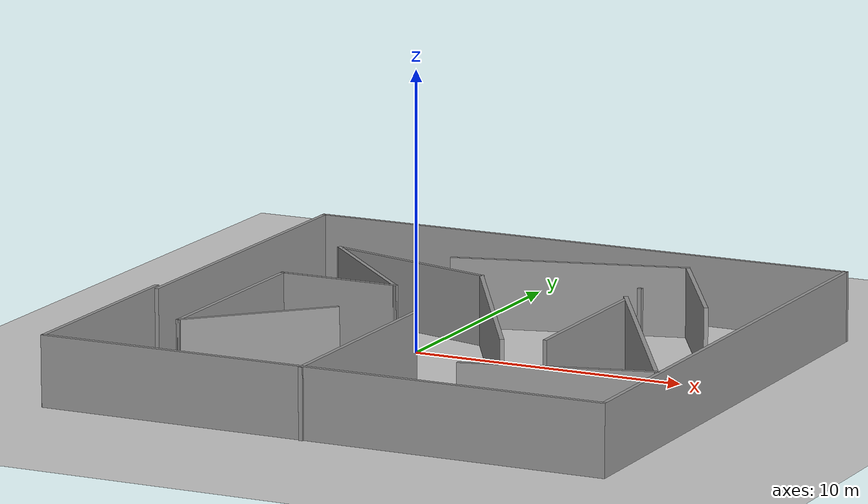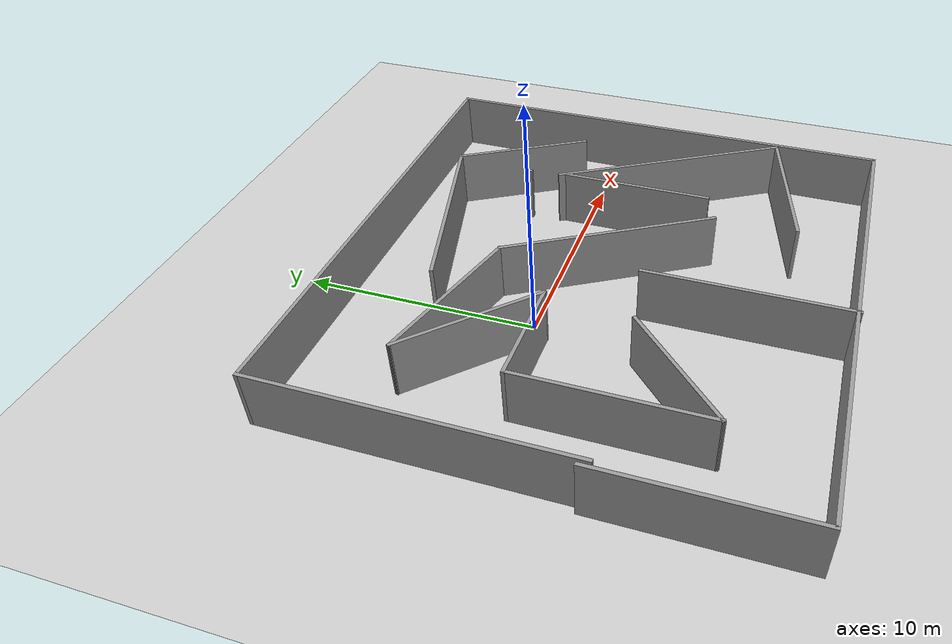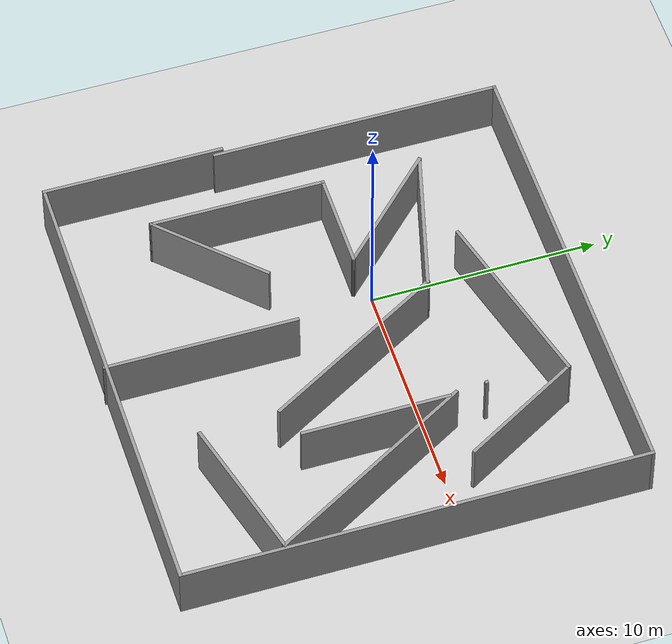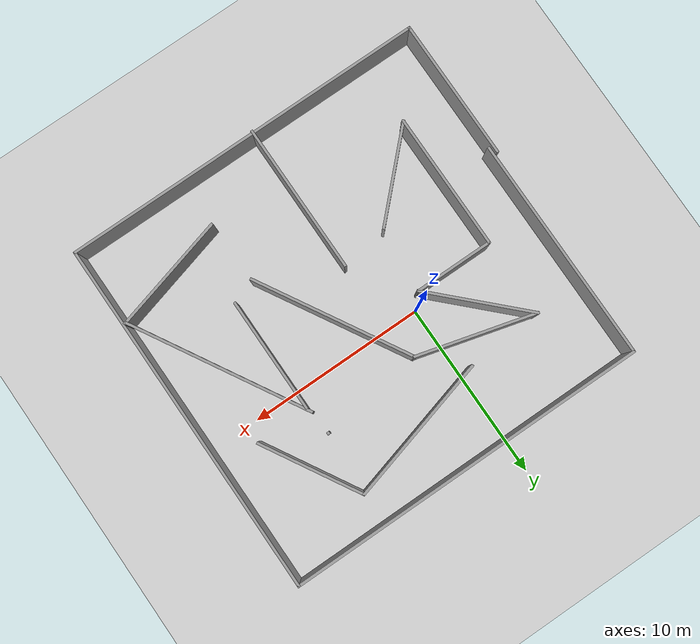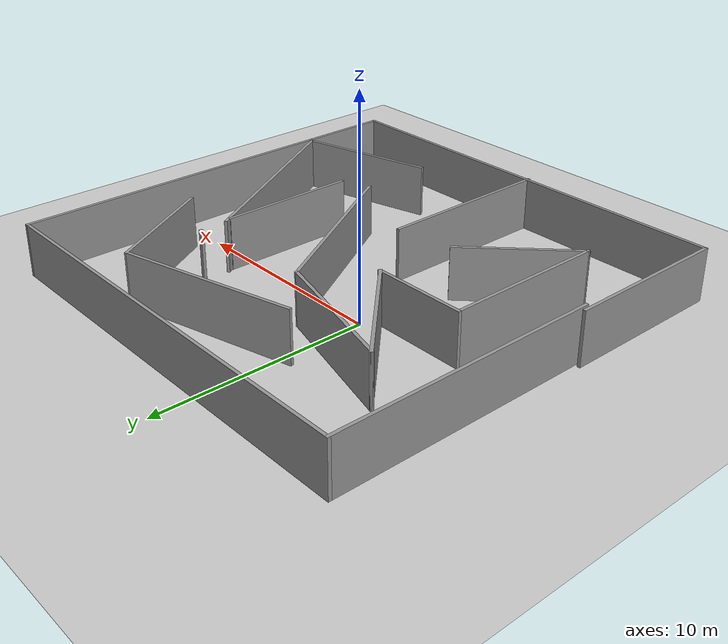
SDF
<sdf version="1.4">
 <world name="default">
  <light name="sun" type="directional">
   <pose>0 0 10 0 -0 0</pose>
   <diffuse>0.8 0.8 0.8 1</diffuse>
   <specular>0.2 0.2 0.2 1</specular>
   <attenuation>
    <range>1000</range>
    <constant>0.9</constant>
    <linear>0.01</linear>
    <quadratic>0.001</quadratic>
   </attenuation>
   <direction>0.5 0.1 -0.9</direction>
  </light>
  <model name="ground_plane">
   <static>1</static>
   <link name="link">
    <collision name="collision">
     <geometry><plane><normal>0 0 1</normal><size>100 100</size></plane></geometry>
     <surface><friction><ode><mu>100</mu><mu2>50</mu2></ode></friction></surface>
    </collision>
    <visual name="visual">
     <cast_shadows>0</cast_shadows>
     <geometry><plane><normal>0 0 1</normal><size>100 100</size></plane></geometry>
     <material>
      <script><uri>file://media/materials/scripts/gazebo.material</uri><name>Gazebo/Grey</name></script>
     </material>
    </visual>
    <velocity_decay><linear>0</linear><angular>0</angular></velocity_decay>
   </link>
  </model>
  <scene><ambient>0.4 0.4 0.4 1</ambient><background>0.7 0.7 0.7 1</background><shadows>0</shadows></scene>
  <physics type="ode">
   <max_step_size>0.01</max_step_size>
   <real_time_factor>1</real_time_factor>
   <real_time_update_rate>0</real_time_update_rate>
   <gravity>0 0 -9.8</gravity>
  </physics>
  <include><uri>model://custom_maze</uri><pose>2.4 -2.1 0 0 0 0</pose></include>
 </world>
</sdf>

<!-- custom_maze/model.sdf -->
<sdf version='1.7'>
  <model name='custom_maze'>
    <pose>-0.400527 0.370273 0 0 -0 0</pose>
    <link name='Wall_13'>
      <collision name='Wall_13_Collision'>
        <geometry>
          <box>
            <size>0.16 0.15 2.5</size>
          </box>
        </geometry>
        <pose>0 0 1.25 0 -0 0</pose>
      </collision>
      <visual name='Wall_13_Visual'>
        <pose>0 0 1.25 0 -0 0</pose>
        <geometry>
          <box>
            <size>0.16 0.15 2.5</size>
          </box>
        </geometry>
        <material>
          <script>
            <uri>file://media/materials/scripts/gazebo.material</uri>
            <name>Gazebo/Grey</name>
          </script>
          <ambient>1 1 1 1</ambient>
        </material>
        <meta>
          <layer>0</layer>
        </meta>
      </visual>
      <pose>4.87592 4.74466 0 0 -0 0</pose>
    </link>
    <link name='Wall_16'>
      <collision name='Wall_16_Collision'>
        <geometry>
          <box>
            <size>8.5 0.15 2.5</size>
          </box>
        </geometry>
        <pose>0 0 1.25 0 -0 0</pose>
      </collision>
      <visual name='Wall_16_Visual'>
        <pose>0 0 1.25 0 -0 0</pose>
        <geometry>
          <box>
            <size>8.5 0.15 2.5</size>
          </box>
        </geometry>
        <material>
          <script>
            <uri>file://media/materials/scripts/gazebo.material</uri>
            <name>Gazebo/Grey</name>
          </script>
          <ambient>1 1 1 1</ambient>
        </material>
        <meta>
          <layer>0</layer>
        </meta>
      </visual>
      <pose>1.08404 7.16042 0 0 -0 0.261799</pose>
    </link>
    <link name='Wall_17'>
      <collision name='Wall_17_Collision'>
        <geometry>
          <box>
            <size>6 0.15 2.5</size>
          </box>
        </geometry>
        <pose>0 0 1.25 0 -0 0</pose>
      </collision>
      <visual name='Wall_17_Visual'>
        <pose>0 0 1.25 0 -0 0</pose>
        <geometry>
          <box>
            <size>6 0.15 2.5</size>
          </box>
        </geometry>
        <material>
          <script>
            <uri>file://media/materials/scripts/gazebo.material</uri>
            <name>Gazebo/Grey</name>
          </script>
          <ambient>1 1 1 1</ambient>
        </material>
        <meta>
          <layer>0</layer>
        </meta>
      </visual>
      <pose>6.57928 5.70786 0 0 -0 -1.0472</pose>
    </link>
    <link name='Wall_19'>
      <collision name='Wall_19_Collision'>
        <geometry>
          <box>
            <size>10.5 0.15 2.5</size>
          </box>
        </geometry>
        <pose>0 0 1.25 0 -0 0</pose>
      </collision>
      <visual name='Wall_19_Visual'>
        <pose>0 0 1.25 0 -0 0</pose>
        <geometry>
          <box>
            <size>10.5 0.15 2.5</size>
          </box>
        </geometry>
        <material>
          <script>
            <uri>file://media/materials/scripts/gazebo.material</uri>
            <name>Gazebo/Grey</name>
          </script>
          <ambient>1 1 1 1</ambient>
        </material>
        <meta>
          <layer>0</layer>
        </meta>
      </visual>
      <pose>7.55134 -1.09448 0 0 -0 -1.0472</pose>
    </link>
    <link name='Wall_21'>
      <collision name='Wall_21_Collision'>
        <geometry>
          <box>
            <size>6.5 0.15 2.5</size>
          </box>
        </geometry>
        <pose>0 0 1.25 0 -0 0</pose>
      </collision>
      <visual name='Wall_21_Visual'>
        <pose>0 0 1.25 0 -0 0</pose>
        <geometry>
          <box>
            <size>6.5 0.15 2.5</size>
          </box>
        </geometry>
        <material>
          <script>
            <uri>file://media/materials/scripts/gazebo.material</uri>
            <name>Gazebo/Grey</name>
          </script>
          <ambient>1 1 1 1</ambient>
        </material>
        <meta>
          <layer>0</layer>
        </meta>
      </visual>
      <pose>5.06845 -0.101621 0 0 -0 -1.5708</pose>
    </link>
    <link name='Wall_23'>
      <collision name='Wall_23_Collision'>
        <geometry>
          <box>
            <size>9.25 0.15 2.5</size>
          </box>
        </geometry>
        <pose>0 0 1.25 0 -0 0</pose>
      </collision>
      <visual name='Wall_23_Visual'>
        <pose>0 0 1.25 0 -0 0</pose>
        <geometry>
          <box>
            <size>9.25 0.15 2.5</size>
          </box>
        </geometry>
        <material>
          <script>
            <uri>file://media/materials/scripts/gazebo.material</uri>
            <name>Gazebo/Grey</name>
          </script>
          <ambient>1 1 1 1</ambient>
        </material>
        <meta>
          <layer>0</layer>
        </meta>
      </visual>
      <pose>1.43354 0.109629 0 0 -0 2.0944</pose>
    </link>
    <link name='Wall_24'>
      <collision name='Wall_24_Collision'>
        <geometry>
          <box>
            <size>6.75 0.15 2.5</size>
          </box>
        </geometry>
        <pose>0 0 1.25 0 -0 0</pose>
      </collision>
      <visual name='Wall_24_Visual'>
        <pose>0 0 1.25 0 -0 0</pose>
        <geometry>
          <box>
            <size>6.75 0.15 2.5</size>
          </box>
        </geometry>
        <material>
          <script>
            <uri>file://media/materials/scripts/gazebo.material</uri>
            <name>Gazebo/Grey</name>
          </script>
          <ambient>1 1 1 1</ambient>
        </material>
        <meta>
          <layer>0</layer>
        </meta>
      </visual>
      <pose>-4.02901 4.90415 0 0 -0 2.87979</pose>
    </link>
    <link name='Wall_25'>
      <collision name='Wall_25_Collision'>
        <geometry>
          <box>
            <size>6.25 0.15 2.5</size>
          </box>
        </geometry>
        <pose>0 0 1.25 0 -0 0</pose>
      </collision>
      <visual name='Wall_25_Visual'>
        <pose>0 0 1.25 0 -0 0</pose>
        <geometry>
          <box>
            <size>6.25 0.15 2.5</size>
          </box>
        </geometry>
        <material>
          <script>
            <uri>file://media/materials/scripts/gazebo.material</uri>
            <name>Gazebo/Grey</name>
          </script>
          <ambient>1 1 1 1</ambient>
        </material>
        <meta>
          <layer>0</layer>
        </meta>
      </visual>
      <pose>-5.05989 3.60157 0 0 -0 -0.785398</pose>
    </link>
    <link name='Wall_26'>
      <collision name='Wall_26_Collision'>
        <geometry>
          <box>
            <size>4.5 0.15 2.5</size>
          </box>
        </geometry>
        <pose>0 0 1.25 0 -0 0</pose>
      </collision>
      <visual name='Wall_26_Visual'>
        <pose>0 0 1.25 0 -0 0</pose>
        <geometry>
          <box>
            <size>4.5 0.15 2.5</size>
          </box>
        </geometry>
        <material>
          <script>
            <uri>file://media/materials/scripts/gazebo.material</uri>
            <name>Gazebo/Grey</name>
          </script>
          <ambient>1 1 1 1</ambient>
        </material>
        <meta>
          <layer>0</layer>
        </meta>
      </visual>
      <pose>-5.07822 1.4449 0 0 -0 3.14159</pose>
    </link>
    <link name='Wall_27'>
      <collision name='Wall_27_Collision'>
        <geometry>
          <box>
            <size>7.75 0.15 2.5</size>
          </box>
        </geometry>
        <pose>0 0 1.25 0 -0 0</pose>
      </collision>
      <visual name='Wall_27_Visual'>
        <pose>0 0 1.25 0 -0 0</pose>
        <geometry>
          <box>
            <size>7.75 0.15 2.5</size>
          </box>
        </geometry>
        <material>
          <script>
            <uri>file://media/materials/scripts/gazebo.material</uri>
            <name>Gazebo/Grey</name>
          </script>
          <ambient>1 1 1 1</ambient>
        </material>
        <meta>
          <layer>0</layer>
        </meta>
      </visual>
      <pose>-7.25322 -2.3551 0 0 -0 -1.5708</pose>
    </link>
    <link name='Wall_28'>
      <collision name='Wall_28_Collision'>
        <geometry>
          <box>
            <size>5.75 0.15 2.5</size>
          </box>
        </geometry>
        <pose>0 0 1.25 0 -0 0</pose>
      </collision>
      <visual name='Wall_28_Visual'>
        <pose>0 0 1.25 0 -0 0</pose>
        <geometry>
          <box>
            <size>5.75 0.15 2.5</size>
          </box>
        </geometry>
        <material>
          <script>
            <uri>file://media/materials/scripts/gazebo.material</uri>
            <name>Gazebo/Grey</name>
          </script>
          <ambient>1 1 1 1</ambient>
        </material>
        <meta>
          <layer>0</layer>
        </meta>
      </visual>
      <pose>-5.27332 -4.1752 0 0 -0 0.785398</pose>
    </link>
    <link name='Wall_3'>
      <collision name='Wall_3_Collision'>
        <geometry>
          <box>
            <size>8 0.15 2.5</size>
          </box>
        </geometry>
        <pose>0 0 1.25 0 -0 0</pose>
      </collision>
      <visual name='Wall_3_Visual'>
        <pose>0 0 1.25 0 -0 0</pose>
        <geometry>
          <box>
            <size>8 0.15 2.5</size>
          </box>
        </geometry>
        <material>
          <script>
            <uri>file://media/materials/scripts/gazebo.material</uri>
            <name>Gazebo/Grey</name>
          </script>
          <ambient>1 1 1 1</ambient>
        </material>
        <meta>
          <layer>0</layer>
        </meta>
      </visual>
      <pose>-10.3 -6.08639 0 0 -0 -1.5708</pose>
    </link>
    <link name='Wall_30'>
      <collision name='Wall_30_Collision'>
        <geometry>
          <box>
            <size>8.5 0.15 2.5</size>
          </box>
        </geometry>
        <pose>0 0 1.25 0 -0 0</pose>
      </collision>
      <visual name='Wall_30_Visual'>
        <pose>0 0 1.25 0 -0 0</pose>
        <geometry>
          <box>
            <size>8.5 0.15 2.5</size>
          </box>
        </geometry>
        <material>
          <script>
            <uri>file://media/materials/scripts/gazebo.material</uri>
            <name>Gazebo/Grey</name>
          </script>
          <ambient>1 1 1 1</ambient>
        </material>
        <meta>
          <layer>0</layer>
        </meta>
      </visual>
      <pose>-0.58041 -5.91362 0 0 -0 -1.5708</pose>
    </link>
    <link name='Wall_32'>
      <collision name='Wall_32_Collision'>
        <geometry>
          <box>
            <size>6.75 0.15 2.5</size>
          </box>
        </geometry>
        <pose>0 0 1.25 0 -0 0</pose>
      </collision>
      <visual name='Wall_32_Visual'>
        <pose>0 0 1.25 0 -0 0</pose>
        <geometry>
          <box>
            <size>6.75 0.15 2.5</size>
          </box>
        </geometry>
        <material>
          <script>
            <uri>file://media/materials/scripts/gazebo.material</uri>
            <name>Gazebo/Grey</name>
          </script>
          <ambient>1 1 1 1</ambient>
        </material>
        <meta>
          <layer>0</layer>
        </meta>
      </visual>
      <pose>7.0007 -6.42877 0 0 -0 0.261799</pose>
    </link>
    <link name='Wall_4'>
      <collision name='Wall_4_Collision'>
        <geometry>
          <box>
            <size>20.75 0.15 2.5</size>
          </box>
        </geometry>
        <pose>0 0 1.25 0 -0 0</pose>
      </collision>
      <visual name='Wall_4_Visual'>
        <pose>0 0 1.25 0 -0 0</pose>
        <geometry>
          <box>
            <size>20.75 0.15 2.5</size>
          </box>
        </geometry>
        <material>
          <script>
            <uri>file://media/materials/scripts/gazebo.material</uri>
            <name>Gazebo/Grey</name>
          </script>
          <ambient>1 1 1 1</ambient>
        </material>
        <meta>
          <layer>0</layer>
        </meta>
      </visual>
      <pose>0 -10.0114 0 0 -0 0</pose>
    </link>
    <link name='Wall_5'>
      <collision name='Wall_5_Collision'>
        <geometry>
          <box>
            <size>20.25 0.15 2.5</size>
          </box>
        </geometry>
        <pose>0 0 1.25 0 -0 0</pose>
      </collision>
      <visual name='Wall_5_Visual'>
        <pose>0 0 1.25 0 -0 0</pose>
        <geometry>
          <box>
            <size>20.25 0.15 2.5</size>
          </box>
        </geometry>
        <material>
          <script>
            <uri>file://media/materials/scripts/gazebo.material</uri>
            <name>Gazebo/Grey</name>
          </script>
          <ambient>1 1 1 1</ambient>
        </material>
        <meta>
          <layer>0</layer>
        </meta>
      </visual>
      <pose>10.3 0.038614 0 0 -0 1.5708</pose>
    </link>
    <link name='Wall_6'>
      <collision name='Wall_6_Collision'>
        <geometry>
          <box>
            <size>20.5 0.15 2.5</size>
          </box>
        </geometry>
        <pose>0 0 1.25 0 -0 0</pose>
      </collision>
      <visual name='Wall_6_Visual'>
        <pose>0 0 1.25 0 -0 0</pose>
        <geometry>
          <box>
            <size>20.5 0.15 2.5</size>
          </box>
        </geometry>
        <material>
          <script>
            <uri>file://media/materials/scripts/gazebo.material</uri>
            <name>Gazebo/Grey</name>
          </script>
          <ambient>1 1 1 1</ambient>
        </material>
        <meta>
          <layer>0</layer>
        </meta>
      </visual>
      <pose>0.125 10.0886 0 0 -0 3.14159</pose>
    </link>
    <link name='Wall_7'>
      <collision name='Wall_7_Collision'>
        <geometry>
          <box>
            <size>12.75 0.15 2.5</size>
          </box>
        </geometry>
        <pose>0 0 1.25 0 -0 0</pose>
      </collision>
      <visual name='Wall_7_Visual'>
        <pose>0 0 1.25 0 -0 0</pose>
        <geometry>
          <box>
            <size>12.75 0.15 2.5</size>
          </box>
        </geometry>
        <material>
          <script>
            <uri>file://media/materials/scripts/gazebo.material</uri>
            <name>Gazebo/Grey</name>
          </script>
          <ambient>1 1 1 1</ambient>
        </material>
        <meta>
          <layer>0</layer>
        </meta>
      </visual>
      <pose>-10.05 3.78861 0 0 -0 -1.5708</pose>
    </link>
    <static>1</static>
  </model>
</sdf>
